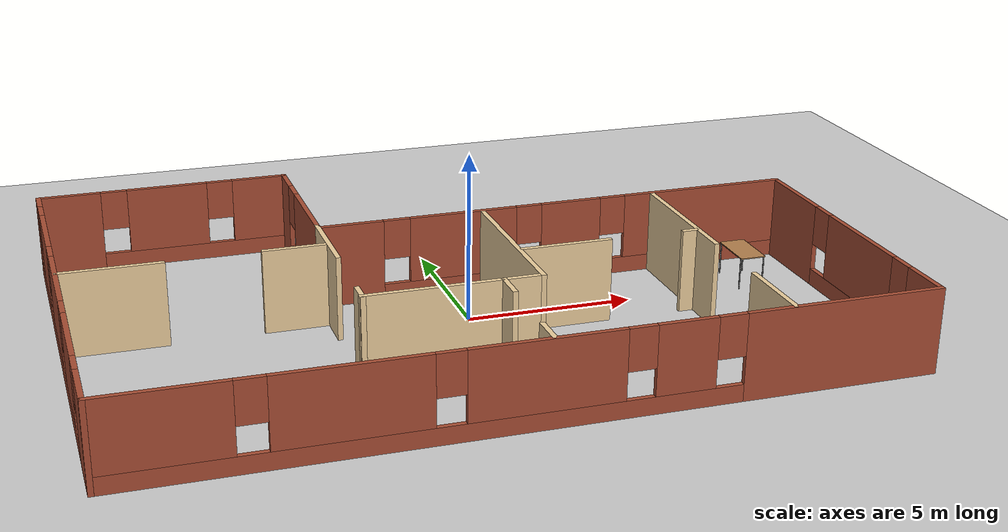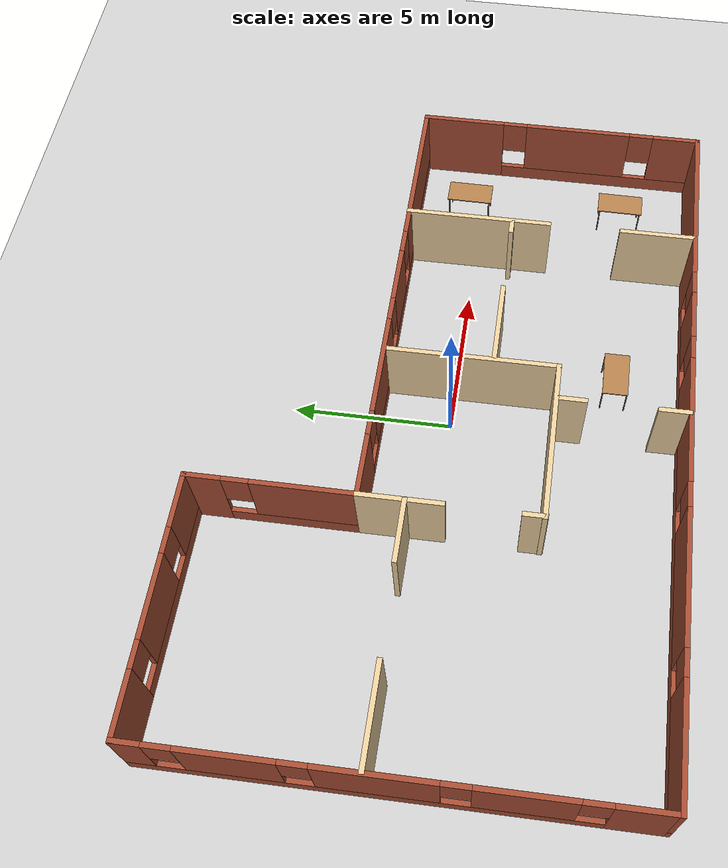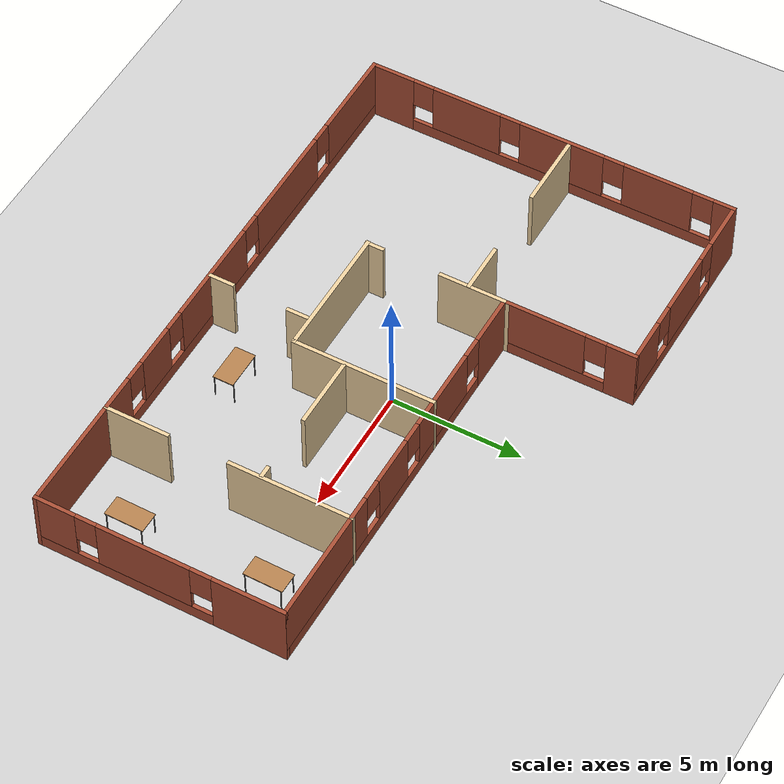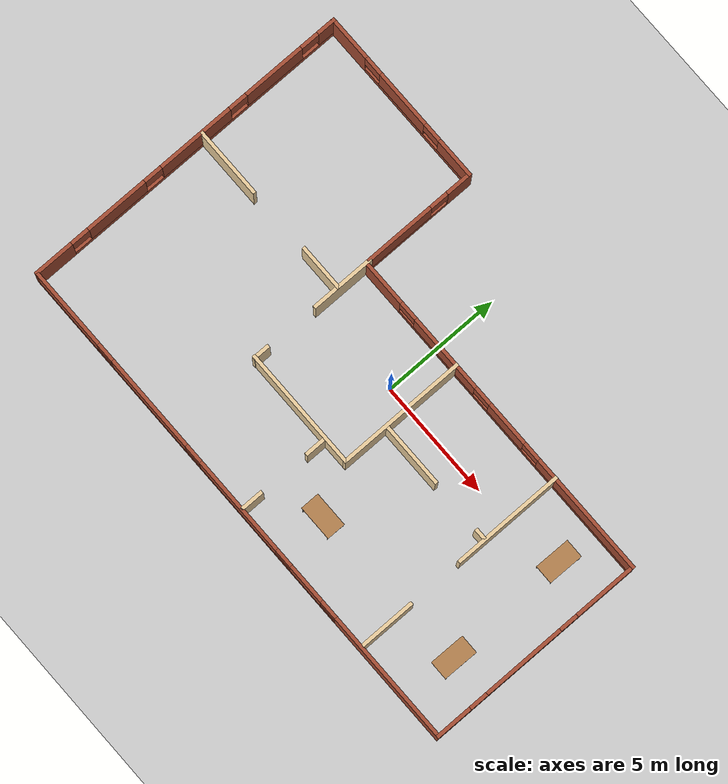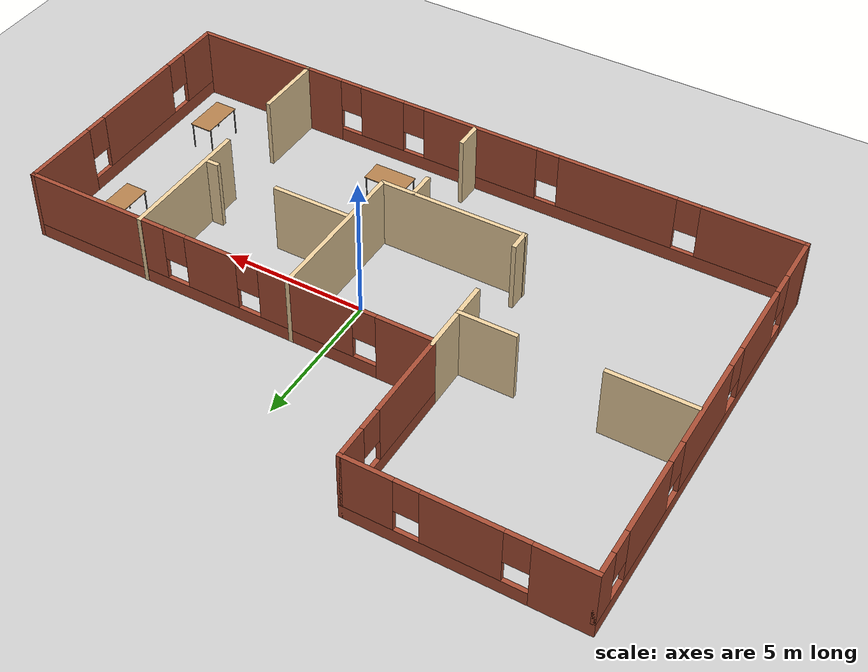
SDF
<sdf version="1.6">
 <world name="default">
  <model name="ground_plane">
   <static>1</static>
   <link name="link">
    <collision name="collision">
     <geometry><plane><normal>0 0 1</normal><size>100 100</size></plane></geometry>
     <surface><friction><ode><mu>100</mu><mu2>50</mu2></ode></friction></surface>
    </collision>
    <visual name="visual">
     <cast_shadows>0</cast_shadows>
     <geometry><plane><normal>0 0 1</normal><size>100 100</size></plane></geometry>
     <material>
      <script><uri>file://media/materials/scripts/gazebo.material</uri><name>Gazebo/Grey</name></script>
     </material>
    </visual>
   </link>
  </model>
  <model name="table_1">
   <static>1</static>
   <link name="link">
    <collision name="surface">
     <pose>0 0 1 0 -0 0</pose>
     <geometry><box><size>1.5 0.8 0.03</size></box></geometry>
     <surface><friction><ode><mu>0.6</mu><mu2>0.6</mu2></ode></friction></surface>
    </collision>
    <visual name="visual1">
     <pose>0 0 1 0 -0 0</pose>
     <geometry><box><size>1.5 0.8 0.03</size></box></geometry>
     <material>
      <script><uri>file://media/materials/scripts/gazebo.material</uri><name>Gazebo/Wood</name></script>
     </material>
    </visual>
    <collision name="front_left_leg">
     <pose>0.68 0.38 0.5 0 -0 0</pose>
     <geometry><cylinder><radius>0.02</radius><length>1</length></cylinder></geometry>
    </collision>
    <visual name="front_left_leg">
     <pose>0.68 0.38 0.5 0 -0 0</pose>
     <geometry><cylinder><radius>0.02</radius><length>1</length></cylinder></geometry>
     <material>
      <script><uri>file://media/materials/scripts/gazebo.material</uri><name>Gazebo/Grey</name></script>
     </material>
    </visual>
    <collision name="front_right_leg">
     <pose>0.68 -0.38 0.5 0 -0 0</pose>
     <geometry><cylinder><radius>0.02</radius><length>1</length></cylinder></geometry>
    </collision>
    <visual name="front_right_leg">
     <pose>0.68 -0.38 0.5 0 -0 0</pose>
     <geometry><cylinder><radius>0.02</radius><length>1</length></cylinder></geometry>
     <material>
      <script><uri>file://media/materials/scripts/gazebo.material</uri><name>Gazebo/Grey</name></script>
     </material>
    </visual>
    <collision name="back_right_leg">
     <pose>-0.68 -0.38 0.5 0 -0 0</pose>
     <geometry><cylinder><radius>0.02</radius><length>1</length></cylinder></geometry>
    </collision>
    <visual name="back_right_leg">
     <pose>-0.68 -0.38 0.5 0 -0 0</pose>
     <geometry><cylinder><radius>0.02</radius><length>1</length></cylinder></geometry>
     <material>
      <script><uri>file://media/materials/scripts/gazebo.material</uri><name>Gazebo/Grey</name></script>
     </material>
    </visual>
    <collision name="back_left_leg">
     <pose>-0.68 0.38 0.5 0 -0 0</pose>
     <geometry><cylinder><radius>0.02</radius><length>1</length></cylinder></geometry>
    </collision>
    <visual name="back_left_leg">
     <pose>-0.68 0.38 0.5 0 -0 0</pose>
     <geometry><cylinder><radius>0.02</radius><length>1</length></cylinder></geometry>
     <material>
      <script><uri>file://media/materials/scripts/gazebo.material</uri><name>Gazebo/Grey</name></script>
     </material>
    </visual>
   </link>
   <pose>1.9978 -5.01029 0 0 -0 0</pose>
  </model>
  <model name="table_2">
   <static>1</static>
   <link name="link">
    <collision name="surface">
     <pose>0 0 1 0 -0 0</pose>
     <geometry><box><size>1.5 0.8 0.03</size></box></geometry>
     <surface><friction><ode><mu>0.6</mu><mu2>0.6</mu2></ode></friction></surface>
    </collision>
    <visual name="visual1">
     <pose>0 0 1 0 -0 0</pose>
     <geometry><box><size>1.5 0.8 0.03</size></box></geometry>
     <material>
      <script><uri>file://media/materials/scripts/gazebo.material</uri><name>Gazebo/Wood</name></script>
     </material>
    </visual>
    <collision name="front_left_leg">
     <pose>0.68 0.38 0.5 0 -0 0</pose>
     <geometry><cylinder><radius>0.02</radius><length>1</length></cylinder></geometry>
    </collision>
    <visual name="front_left_leg">
     <pose>0.68 0.38 0.5 0 -0 0</pose>
     <geometry><cylinder><radius>0.02</radius><length>1</length></cylinder></geometry>
     <material>
      <script><uri>file://media/materials/scripts/gazebo.material</uri><name>Gazebo/Grey</name></script>
     </material>
    </visual>
    <collision name="front_right_leg">
     <pose>0.68 -0.38 0.5 0 -0 0</pose>
     <geometry><cylinder><radius>0.02</radius><length>1</length></cylinder></geometry>
    </collision>
    <visual name="front_right_leg">
     <pose>0.68 -0.38 0.5 0 -0 0</pose>
     <geometry><cylinder><radius>0.02</radius><length>1</length></cylinder></geometry>
     <material>
      <script><uri>file://media/materials/scripts/gazebo.material</uri><name>Gazebo/Grey</name></script>
     </material>
    </visual>
    <collision name="back_right_leg">
     <pose>-0.68 -0.38 0.5 0 -0 0</pose>
     <geometry><cylinder><radius>0.02</radius><length>1</length></cylinder></geometry>
    </collision>
    <visual name="back_right_leg">
     <pose>-0.68 -0.38 0.5 0 -0 0</pose>
     <geometry><cylinder><radius>0.02</radius><length>1</length></cylinder></geometry>
     <material>
      <script><uri>file://media/materials/scripts/gazebo.material</uri><name>Gazebo/Grey</name></script>
     </material>
    </visual>
    <collision name="back_left_leg">
     <pose>-0.68 0.38 0.5 0 -0 0</pose>
     <geometry><cylinder><radius>0.02</radius><length>1</length></cylinder></geometry>
    </collision>
    <visual name="back_left_leg">
     <pose>-0.68 0.38 0.5 0 -0 0</pose>
     <geometry><cylinder><radius>0.02</radius><length>1</length></cylinder></geometry>
     <material>
      <script><uri>file://media/materials/scripts/gazebo.material</uri><name>Gazebo/Grey</name></script>
     </material>
    </visual>
   </link>
   <pose>8.91481 0.43197 0 0 0 -1.57962</pose>
  </model>
  <model name="table_2_clone">
   <static>1</static>
   <link name="link">
    <collision name="surface">
     <pose>0 0 1 0 -0 0</pose>
     <geometry><box><size>1.5 0.8 0.03</size></box></geometry>
     <surface><friction><ode><mu>0.6</mu><mu2>0.6</mu2></ode></friction></surface>
    </collision>
    <visual name="visual1">
     <pose>0 0 1 0 -0 0</pose>
     <geometry><box><size>1.5 0.8 0.03</size></box></geometry>
     <material>
      <script><uri>file://media/materials/scripts/gazebo.material</uri><name>Gazebo/Wood</name></script>
     </material>
    </visual>
    <collision name="front_left_leg">
     <pose>0.68 0.38 0.5 0 -0 0</pose>
     <geometry><cylinder><radius>0.02</radius><length>1</length></cylinder></geometry>
    </collision>
    <visual name="front_left_leg">
     <pose>0.68 0.38 0.5 0 -0 0</pose>
     <geometry><cylinder><radius>0.02</radius><length>1</length></cylinder></geometry>
     <material>
      <script><uri>file://media/materials/scripts/gazebo.material</uri><name>Gazebo/Grey</name></script>
     </material>
    </visual>
    <collision name="front_right_leg">
     <pose>0.68 -0.38 0.5 0 -0 0</pose>
     <geometry><cylinder><radius>0.02</radius><length>1</length></cylinder></geometry>
    </collision>
    <visual name="front_right_leg">
     <pose>0.68 -0.38 0.5 0 -0 0</pose>
     <geometry><cylinder><radius>0.02</radius><length>1</length></cylinder></geometry>
     <material>
      <script><uri>file://media/materials/scripts/gazebo.material</uri><name>Gazebo/Grey</name></script>
     </material>
    </visual>
    <collision name="back_right_leg">
     <pose>-0.68 -0.38 0.5 0 -0 0</pose>
     <geometry><cylinder><radius>0.02</radius><length>1</length></cylinder></geometry>
    </collision>
    <visual name="back_right_leg">
     <pose>-0.68 -0.38 0.5 0 -0 0</pose>
     <geometry><cylinder><radius>0.02</radius><length>1</length></cylinder></geometry>
     <material>
      <script><uri>file://media/materials/scripts/gazebo.material</uri><name>Gazebo/Grey</name></script>
     </material>
    </visual>
    <collision name="back_left_leg">
     <pose>-0.68 0.38 0.5 0 -0 0</pose>
     <geometry><cylinder><radius>0.02</radius><length>1</length></cylinder></geometry>
    </collision>
    <visual name="back_left_leg">
     <pose>-0.68 0.38 0.5 0 -0 0</pose>
     <geometry><cylinder><radius>0.02</radius><length>1</length></cylinder></geometry>
     <material>
      <script><uri>file://media/materials/scripts/gazebo.material</uri><name>Gazebo/Grey</name></script>
     </material>
    </visual>
   </link>
   <pose>9.03987 -4.78179 0 0 0 -1.57962</pose>
  </model>
  <model name="building">
   <pose>-0.32696 0.02857 0 0 -0 0</pose>
   <link name="Wall_101">
    <pose>-3.575 4.75 0 0 -0 -1.5708</pose>
    <visual name="Wall_101_Visual_0">
     <pose>-1.91994 0 1.25 0 -0 0</pose>
     <geometry><box><size>1.16012 0.15 2.5</size></box></geometry>
     <material>
      <script><uri>file://media/materials/scripts/gazebo.material</uri><name>Gazebo/Bricks</name></script>
      <ambient>1 1 1 1</ambient>
     </material>
     <meta><layer>0</layer></meta>
    </visual>
    <collision name="Wall_101_Collision_0">
     <geometry><box><size>1.16012 0.15 2.5</size></box></geometry>
     <pose>-1.91994 0 1.25 0 -0 0</pose>
    </collision>
    <visual name="Wall_101_Visual_1">
     <pose>0.580059 0 0.25 0 -0 0</pose>
     <geometry><box><size>3.83988 0.15 0.5</size></box></geometry>
     <material>
      <script><uri>file://media/materials/scripts/gazebo.material</uri><name>Gazebo/Bricks</name></script>
      <ambient>1 1 1 1</ambient>
     </material>
     <meta><layer>0</layer></meta>
    </visual>
    <collision name="Wall_101_Collision_1">
     <geometry><box><size>3.83988 0.15 0.5</size></box></geometry>
     <pose>0.580059 0 0.25 0 -0 0</pose>
    </collision>
    <visual name="Wall_101_Visual_2">
     <pose>0.980059 0 1.5 0 -0 0</pose>
     <geometry><box><size>3.03988 0.15 2</size></box></geometry>
     <material>
      <script><uri>file://media/materials/scripts/gazebo.material</uri><name>Gazebo/Bricks</name></script>
      <ambient>1 1 1 1</ambient>
     </material>
     <meta><layer>0</layer></meta>
    </visual>
    <collision name="Wall_101_Collision_2">
     <geometry><box><size>3.03988 0.15 2</size></box></geometry>
     <pose>0.980059 0 1.5 0 -0 0</pose>
    </collision>
    <visual name="Wall_101_Visual_3">
     <pose>-0.939883 0 1.9 0 -0 0</pose>
     <geometry><box><size>0.8 0.15 1.2</size></box></geometry>
     <material>
      <script><uri>file://media/materials/scripts/gazebo.material</uri><name>Gazebo/Bricks</name></script>
      <ambient>1 1 1 1</ambient>
     </material>
     <meta><layer>0</layer></meta>
    </visual>
    <collision name="Wall_101_Collision_3">
     <geometry><box><size>0.8 0.15 1.2</size></box></geometry>
     <pose>-0.939883 0 1.9 0 -0 0</pose>
    </collision>
   </link>
   <link name="Wall_103">
    <collision name="Wall_103_Collision">
     <geometry><box><size>2.75 0.15 2.5</size></box></geometry>
     <pose>0 0 1.25 0 -0 0</pose>
    </collision>
    <visual name="Wall_103_Visual">
     <pose>0 0 1.25 0 -0 0</pose>
     <geometry><box><size>2.75 0.15 2.5</size></box></geometry>
     <material>
      <script><uri>file://media/materials/scripts/gazebo.material</uri><name>Gazebo/Grey</name></script>
      <ambient>0.921569 0.807843 0.615686 1</ambient>
     </material>
     <meta><layer>0</layer></meta>
    </visual>
    <pose>-3.575 1.025 0 0 -0 -1.5708</pose>
   </link>
   <link name="Wall_19">
    <pose>3.875 2.175 0 0 -0 0</pose>
    <visual name="Wall_19_Visual_0">
     <pose>-6.43713 0 1.25 0 -0 0</pose>
     <geometry><box><size>1.87573 0.15 2.5</size></box></geometry>
     <material>
      <script><uri>file://media/materials/scripts/gazebo.material</uri><name>Gazebo/Bricks</name></script>
      <ambient>1 1 1 1</ambient>
     </material>
     <meta><layer>0</layer></meta>
    </visual>
    <collision name="Wall_19_Collision_0">
     <geometry><box><size>1.87573 0.15 2.5</size></box></geometry>
     <pose>-6.43713 0 1.25 0 -0 0</pose>
    </collision>
    <visual name="Wall_19_Visual_1">
     <pose>0.937865 0 0.25 0 -0 0</pose>
     <geometry><box><size>12.8743 0.15 0.5</size></box></geometry>
     <material>
      <script><uri>file://media/materials/scripts/gazebo.material</uri><name>Gazebo/Bricks</name></script>
      <ambient>1 1 1 1</ambient>
     </material>
     <meta><layer>0</layer></meta>
    </visual>
    <collision name="Wall_19_Collision_1">
     <geometry><box><size>12.8743 0.15 0.5</size></box></geometry>
     <pose>0.937865 0 0.25 0 -0 0</pose>
    </collision>
    <visual name="Wall_19_Visual_2">
     <pose>-3.03299 0 1.5 0 -0 0</pose>
     <geometry><box><size>3.33255 0.15 2</size></box></geometry>
     <material>
      <script><uri>file://media/materials/scripts/gazebo.material</uri><name>Gazebo/Bricks</name></script>
      <ambient>1 1 1 1</ambient>
     </material>
     <meta><layer>0</layer></meta>
    </visual>
    <collision name="Wall_19_Collision_2">
     <geometry><box><size>3.33255 0.15 2</size></box></geometry>
     <pose>-3.03299 0 1.5 0 -0 0</pose>
    </collision>
    <visual name="Wall_19_Visual_3">
     <pose>0.383521 0 1.5 0 -0 0</pose>
     <geometry><box><size>1.90048 0.15 2</size></box></geometry>
     <material>
      <script><uri>file://media/materials/scripts/gazebo.material</uri><name>Gazebo/Bricks</name></script>
      <ambient>1 1 1 1</ambient>
     </material>
     <meta><layer>0</layer></meta>
    </visual>
    <collision name="Wall_19_Collision_3">
     <geometry><box><size>1.90048 0.15 2</size></box></geometry>
     <pose>0.383521 0 1.5 0 -0 0</pose>
    </collision>
    <visual name="Wall_19_Visual_4">
     <pose>4.75438 0 1.5 0 -0 0</pose>
     <geometry><box><size>5.24124 0.15 2</size></box></geometry>
     <material>
      <script><uri>file://media/materials/scripts/gazebo.material</uri><name>Gazebo/Bricks</name></script>
      <ambient>1 1 1 1</ambient>
     </material>
     <meta><layer>0</layer></meta>
    </visual>
    <collision name="Wall_19_Collision_4">
     <geometry><box><size>5.24124 0.15 2</size></box></geometry>
     <pose>4.75438 0 1.5 0 -0 0</pose>
    </collision>
    <visual name="Wall_19_Visual_5">
     <pose>-5.09927 0 1.9 0 -0 0</pose>
     <geometry><box><size>0.8 0.15 1.2</size></box></geometry>
     <material>
      <script><uri>file://media/materials/scripts/gazebo.material</uri><name>Gazebo/Bricks</name></script>
      <ambient>1 1 1 1</ambient>
     </material>
     <meta><layer>0</layer></meta>
    </visual>
    <collision name="Wall_19_Collision_5">
     <geometry><box><size>0.8 0.15 1.2</size></box></geometry>
     <pose>-5.09927 0 1.9 0 -0 0</pose>
    </collision>
    <visual name="Wall_19_Visual_6">
     <pose>-0.966718 0 1.9 0 -0 0</pose>
     <geometry><box><size>0.8 0.15 1.2</size></box></geometry>
     <material>
      <script><uri>file://media/materials/scripts/gazebo.material</uri><name>Gazebo/Bricks</name></script>
      <ambient>1 1 1 1</ambient>
     </material>
     <meta><layer>0</layer></meta>
    </visual>
    <collision name="Wall_19_Collision_6">
     <geometry><box><size>0.8 0.15 1.2</size></box></geometry>
     <pose>-0.966718 0 1.9 0 -0 0</pose>
    </collision>
    <visual name="Wall_19_Visual_7">
     <pose>1.73376 0 1.9 0 -0 0</pose>
     <geometry><box><size>0.8 0.15 1.2</size></box></geometry>
     <material>
      <script><uri>file://media/materials/scripts/gazebo.material</uri><name>Gazebo/Bricks</name></script>
      <ambient>1 1 1 1</ambient>
     </material>
     <meta><layer>0</layer></meta>
    </visual>
    <collision name="Wall_19_Collision_7">
     <geometry><box><size>0.8 0.15 1.2</size></box></geometry>
     <pose>1.73376 0 1.9 0 -0 0</pose>
    </collision>
   </link>
   <link name="Wall_45">
    <collision name="Wall_45_Collision">
     <geometry><box><size>3 0.15 2.5</size></box></geometry>
     <pose>0 0 1.25 0 -0 0</pose>
    </collision>
    <visual name="Wall_45_Visual">
     <pose>0 0 1.25 0 -0 0</pose>
     <geometry><box><size>3 0.15 2.5</size></box></geometry>
     <material>
      <script><uri>file://media/materials/scripts/gazebo.material</uri><name>Gazebo/Grey</name></script>
      <ambient>0.921569 0.807843 0.615686 1</ambient>
     </material>
     <meta><layer>0</layer></meta>
    </visual>
    <pose>-9.70177 0.771555 0 0 -0 0</pose>
   </link>
   <link name="Wall_47">
    <collision name="Wall_47_Collision">
     <geometry><box><size>2 0.15 2.5</size></box></geometry>
     <pose>0 0 1.25 0 -0 0</pose>
    </collision>
    <visual name="Wall_47_Visual">
     <pose>0 0 1.25 0 -0 0</pose>
     <geometry><box><size>2 0.15 2.5</size></box></geometry>
     <material>
      <script><uri>file://media/materials/scripts/gazebo.material</uri><name>Gazebo/Grey</name></script>
      <ambient>0.921569 0.807843 0.615686 1</ambient>
     </material>
     <meta><layer>0</layer></meta>
    </visual>
    <pose>-4.51547 0.805423 0 0 -0 0</pose>
   </link>
   <link name="Wall_60">
    <collision name="Wall_60_Collision">
     <geometry><box><size>5.20343 0.15 2.5</size></box></geometry>
     <pose>0 0 1.25 0 -0 0</pose>
    </collision>
    <visual name="Wall_60_Visual">
     <pose>0 0 1.25 0 -0 0</pose>
     <geometry><box><size>5.20343 0.15 2.5</size></box></geometry>
     <material>
      <script><uri>file://media/materials/scripts/gazebo.material</uri><name>Gazebo/Grey</name></script>
      <ambient>0.921569 0.807843 0.615686 1</ambient>
     </material>
     <meta><layer>0</layer></meta>
    </visual>
    <pose>-1.09679 -3.17412 0 0 -0 0</pose>
   </link>
   <link name="Wall_63">
    <collision name="Wall_63_Collision">
     <geometry><box><size>2.75 0.15 2.5</size></box></geometry>
     <pose>0 0 1.25 0 -0 0</pose>
    </collision>
    <visual name="Wall_63_Visual">
     <pose>0 0 1.25 0 -0 0</pose>
     <geometry><box><size>2.75 0.15 2.5</size></box></geometry>
     <material>
      <script><uri>file://media/materials/scripts/gazebo.material</uri><name>Gazebo/Grey</name></script>
      <ambient>0.921569 0.807843 0.615686 1</ambient>
     </material>
     <meta><layer>0</layer></meta>
    </visual>
    <pose>2.84816 -1.19957 0 0 -0 0</pose>
   </link>
   <link name="Wall_65">
    <collision name="Wall_65_Collision">
     <geometry><box><size>4.75 0.15 2.5</size></box></geometry>
     <pose>0 0 1.25 0 -0 0</pose>
    </collision>
    <visual name="Wall_65_Visual">
     <pose>0 0 1.25 0 -0 0</pose>
     <geometry><box><size>4.75 0.15 2.5</size></box></geometry>
     <material>
      <script><uri>file://media/materials/scripts/gazebo.material</uri><name>Gazebo/Grey</name></script>
      <ambient>0.921569 0.807843 0.615686 1</ambient>
     </material>
     <meta><layer>0</layer></meta>
    </visual>
    <pose>6.90976 -0.111242 0 0 -0 -1.5708</pose>
   </link>
   <link name="Wall_68">
    <collision name="Wall_68_Collision">
     <geometry><box><size>2.5 0.15 2.5</size></box></geometry>
     <pose>0 0 1.25 0 -0 0</pose>
    </collision>
    <visual name="Wall_68_Visual">
     <pose>0 0 1.25 0 -0 0</pose>
     <geometry><box><size>2.5 0.15 2.5</size></box></geometry>
     <material>
      <script><uri>file://media/materials/scripts/gazebo.material</uri><name>Gazebo/Grey</name></script>
      <ambient>0.921569 0.807843 0.615686 1</ambient>
     </material>
     <meta><layer>0</layer></meta>
    </visual>
    <pose>6.91101 -5.97785 0 0 -0 -1.5708</pose>
   </link>
   <link name="Wall_72">
    <collision name="Wall_72_Collision">
     <geometry><box><size>0.5 0.15 2.5</size></box></geometry>
     <pose>0 0 1.25 0 -0 0</pose>
    </collision>
    <visual name="Wall_72_Visual">
     <pose>0 0 1.25 0 -0 0</pose>
     <geometry><box><size>0.5 0.15 2.5</size></box></geometry>
     <material>
      <script><uri>file://media/materials/scripts/gazebo.material</uri><name>Gazebo/Grey</name></script>
      <ambient>0.921569 0.807843 0.615686 1</ambient>
     </material>
     <meta><layer>0</layer></meta>
    </visual>
    <pose>6.65459 -1.22008 0 0 -0 0</pose>
   </link>
   <link name="Wall_75">
    <collision name="Wall_75_Collision">
     <geometry><box><size>1 0.15 2.5</size></box></geometry>
     <pose>0 0 1.25 0 -0 0</pose>
    </collision>
    <visual name="Wall_75_Visual">
     <pose>0 0 1.25 0 -0 0</pose>
     <geometry><box><size>1 0.15 2.5</size></box></geometry>
     <material>
      <script><uri>file://media/materials/scripts/gazebo.material</uri><name>Gazebo/Grey</name></script>
      <ambient>0.921569 0.807843 0.615686 1</ambient>
     </material>
     <meta><layer>0</layer></meta>
    </visual>
    <pose>0.314782 -3.61339 0 0 -0 -1.5708</pose>
   </link>
   <link name="Wall_77">
    <collision name="Wall_77_Collision">
     <geometry><box><size>1 0.15 2.5</size></box></geometry>
     <pose>0 0 1.25 0 -0 0</pose>
    </collision>
    <visual name="Wall_77_Visual">
     <pose>0 0 1.25 0 -0 0</pose>
     <geometry><box><size>1 0.15 2.5</size></box></geometry>
     <material>
      <script><uri>file://media/materials/scripts/gazebo.material</uri><name>Gazebo/Grey</name></script>
      <ambient>0.921569 0.807843 0.615686 1</ambient>
     </material>
     <meta><layer>0</layer></meta>
    </visual>
    <pose>0.289318 -6.69376 0 0 -0 1.5708</pose>
   </link>
   <link name="Wall_80">
    <collision name="Wall_80_Collision">
     <geometry><box><size>5.5 0.15 2.5</size></box></geometry>
     <pose>0 0 1.25 0 -0 0</pose>
    </collision>
    <visual name="Wall_80_Visual">
     <pose>0 0 1.25 0 -0 0</pose>
     <geometry><box><size>5.5 0.15 2.5</size></box></geometry>
     <material>
      <script><uri>file://media/materials/scripts/gazebo.material</uri><name>Gazebo/Grey</name></script>
      <ambient>0.921569 0.807843 0.615686 1</ambient>
     </material>
     <meta><layer>0</layer></meta>
    </visual>
    <pose>1.42992 -0.499121 0 0 -0 1.5708</pose>
   </link>
   <link name="Wall_82">
    <pose>11.175 -2.5 0 0 -0 -1.5708</pose>
    <visual name="Wall_82_Visual_0">
     <pose>-3.36694 0 1.25 0 -0 0</pose>
     <geometry><box><size>2.76612 0.15 2.5</size></box></geometry>
     <material>
      <script><uri>file://media/materials/scripts/gazebo.material</uri><name>Gazebo/Bricks</name></script>
      <ambient>1 1 1 1</ambient>
     </material>
     <meta><layer>0</layer></meta>
    </visual>
    <collision name="Wall_82_Collision_0">
     <geometry><box><size>2.76612 0.15 2.5</size></box></geometry>
     <pose>-3.36694 0 1.25 0 -0 0</pose>
    </collision>
    <visual name="Wall_82_Visual_1">
     <pose>1.38306 0 0.25 0 -0 0</pose>
     <geometry><box><size>6.73388 0.15 0.5</size></box></geometry>
     <material>
      <script><uri>file://media/materials/scripts/gazebo.material</uri><name>Gazebo/Bricks</name></script>
      <ambient>1 1 1 1</ambient>
     </material>
     <meta><layer>0</layer></meta>
    </visual>
    <collision name="Wall_82_Collision_1">
     <geometry><box><size>6.73388 0.15 0.5</size></box></geometry>
     <pose>1.38306 0 0.25 0 -0 0</pose>
    </collision>
    <visual name="Wall_82_Visual_2">
     <pose>0.584685 0 1.5 0 -0 0</pose>
     <geometry><box><size>3.53713 0.15 2</size></box></geometry>
     <material>
      <script><uri>file://media/materials/scripts/gazebo.material</uri><name>Gazebo/Bricks</name></script>
      <ambient>1 1 1 1</ambient>
     </material>
     <meta><layer>0</layer></meta>
    </visual>
    <collision name="Wall_82_Collision_2">
     <geometry><box><size>3.53713 0.15 2</size></box></geometry>
     <pose>0.584685 0 1.5 0 -0 0</pose>
    </collision>
    <visual name="Wall_82_Visual_3">
     <pose>3.95163 0 1.5 0 -0 0</pose>
     <geometry><box><size>1.59675 0.15 2</size></box></geometry>
     <material>
      <script><uri>file://media/materials/scripts/gazebo.material</uri><name>Gazebo/Bricks</name></script>
      <ambient>1 1 1 1</ambient>
     </material>
     <meta><layer>0</layer></meta>
    </visual>
    <collision name="Wall_82_Collision_3">
     <geometry><box><size>1.59675 0.15 2</size></box></geometry>
     <pose>3.95163 0 1.5 0 -0 0</pose>
    </collision>
    <visual name="Wall_82_Visual_4">
     <pose>-1.58388 0 1.9 0 -0 0</pose>
     <geometry><box><size>0.8 0.15 1.2</size></box></geometry>
     <material>
      <script><uri>file://media/materials/scripts/gazebo.material</uri><name>Gazebo/Bricks</name></script>
      <ambient>1 1 1 1</ambient>
     </material>
     <meta><layer>0</layer></meta>
    </visual>
    <collision name="Wall_82_Collision_4">
     <geometry><box><size>0.8 0.15 1.2</size></box></geometry>
     <pose>-1.58388 0 1.9 0 -0 0</pose>
    </collision>
    <visual name="Wall_82_Visual_5">
     <pose>2.75325 0 1.9 0 -0 0</pose>
     <geometry><box><size>0.8 0.15 1.2</size></box></geometry>
     <material>
      <script><uri>file://media/materials/scripts/gazebo.material</uri><name>Gazebo/Bricks</name></script>
      <ambient>1 1 1 1</ambient>
     </material>
     <meta><layer>0</layer></meta>
    </visual>
    <collision name="Wall_82_Collision_5">
     <geometry><box><size>0.8 0.15 1.2</size></box></geometry>
     <pose>2.75325 0 1.9 0 -0 0</pose>
    </collision>
   </link>
   <link name="Wall_84">
    <pose>1e-06 -7.175 0 0 -0 3.14159</pose>
    <visual name="Wall_84_Visual_0">
     <pose>-8.38388 0 1.25 0 -0 0</pose>
     <geometry><box><size>5.73224 0.15 2.5</size></box></geometry>
     <material>
      <script><uri>file://media/materials/scripts/gazebo.material</uri><name>Gazebo/Bricks</name></script>
      <ambient>1 1 1 1</ambient>
     </material>
     <meta><layer>0</layer></meta>
    </visual>
    <collision name="Wall_84_Collision_0">
     <geometry><box><size>5.73224 0.15 2.5</size></box></geometry>
     <pose>-8.38388 0 1.25 0 -0 0</pose>
    </collision>
    <visual name="Wall_84_Visual_1">
     <pose>2.86612 0 0.25 0 -0 0</pose>
     <geometry><box><size>16.7678 0.15 0.5</size></box></geometry>
     <material>
      <script><uri>file://media/materials/scripts/gazebo.material</uri><name>Gazebo/Bricks</name></script>
      <ambient>1 1 1 1</ambient>
     </material>
     <meta><layer>0</layer></meta>
    </visual>
    <collision name="Wall_84_Collision_1">
     <geometry><box><size>16.7678 0.15 0.5</size></box></geometry>
     <pose>2.86612 0 0.25 0 -0 0</pose>
    </collision>
    <visual name="Wall_84_Visual_2">
     <pose>-3.87611 0 1.5 0 -0 0</pose>
     <geometry><box><size>1.6833 0.15 2</size></box></geometry>
     <material>
      <script><uri>file://media/materials/scripts/gazebo.material</uri><name>Gazebo/Bricks</name></script>
      <ambient>1 1 1 1</ambient>
     </material>
     <meta><layer>0</layer></meta>
    </visual>
    <collision name="Wall_84_Collision_2">
     <geometry><box><size>1.6833 0.15 2</size></box></geometry>
     <pose>-3.87611 0 1.5 0 -0 0</pose>
    </collision>
    <visual name="Wall_84_Visual_3">
     <pose>-0.118264 0 1.5 0 -0 0</pose>
     <geometry><box><size>4.2324 0.15 2</size></box></geometry>
     <material>
      <script><uri>file://media/materials/scripts/gazebo.material</uri><name>Gazebo/Bricks</name></script>
      <ambient>1 1 1 1</ambient>
     </material>
     <meta><layer>0</layer></meta>
    </visual>
    <collision name="Wall_84_Collision_3">
     <geometry><box><size>4.2324 0.15 2</size></box></geometry>
     <pose>-0.118264 0 1.5 0 -0 0</pose>
    </collision>
    <visual name="Wall_84_Visual_4">
     <pose>4.86003 0 1.5 0 -0 0</pose>
     <geometry><box><size>4.12418 0.15 2</size></box></geometry>
     <material>
      <script><uri>file://media/materials/scripts/gazebo.material</uri><name>Gazebo/Bricks</name></script>
      <ambient>1 1 1 1</ambient>
     </material>
     <meta><layer>0</layer></meta>
    </visual>
    <collision name="Wall_84_Collision_4">
     <geometry><box><size>4.12418 0.15 2</size></box></geometry>
     <pose>4.86003 0 1.5 0 -0 0</pose>
    </collision>
    <visual name="Wall_84_Visual_5">
     <pose>9.48606 0 1.5 0 -0 0</pose>
     <geometry><box><size>3.52788 0.15 2</size></box></geometry>
     <material>
      <script><uri>file://media/materials/scripts/gazebo.material</uri><name>Gazebo/Bricks</name></script>
      <ambient>1 1 1 1</ambient>
     </material>
     <meta><layer>0</layer></meta>
    </visual>
    <collision name="Wall_84_Collision_5">
     <geometry><box><size>3.52788 0.15 2</size></box></geometry>
     <pose>9.48606 0 1.5 0 -0 0</pose>
    </collision>
    <visual name="Wall_84_Visual_6">
     <pose>-5.11776 0 1.9 0 -0 0</pose>
     <geometry><box><size>0.8 0.15 1.2</size></box></geometry>
     <material>
      <script><uri>file://media/materials/scripts/gazebo.material</uri><name>Gazebo/Bricks</name></script>
      <ambient>1 1 1 1</ambient>
     </material>
     <meta><layer>0</layer></meta>
    </visual>
    <collision name="Wall_84_Collision_6">
     <geometry><box><size>0.8 0.15 1.2</size></box></geometry>
     <pose>-5.11776 0 1.9 0 -0 0</pose>
    </collision>
    <visual name="Wall_84_Visual_7">
     <pose>-2.63447 0 1.9 0 -0 0</pose>
     <geometry><box><size>0.8 0.15 1.2</size></box></geometry>
     <material>
      <script><uri>file://media/materials/scripts/gazebo.material</uri><name>Gazebo/Bricks</name></script>
      <ambient>1 1 1 1</ambient>
     </material>
     <meta><layer>0</layer></meta>
    </visual>
    <collision name="Wall_84_Collision_7">
     <geometry><box><size>0.8 0.15 1.2</size></box></geometry>
     <pose>-2.63447 0 1.9 0 -0 0</pose>
    </collision>
    <visual name="Wall_84_Visual_8">
     <pose>2.39794 0 1.9 0 -0 0</pose>
     <geometry><box><size>0.8 0.15 1.2</size></box></geometry>
     <material>
      <script><uri>file://media/materials/scripts/gazebo.material</uri><name>Gazebo/Bricks</name></script>
      <ambient>1 1 1 1</ambient>
     </material>
     <meta><layer>0</layer></meta>
    </visual>
    <collision name="Wall_84_Collision_8">
     <geometry><box><size>0.8 0.15 1.2</size></box></geometry>
     <pose>2.39794 0 1.9 0 -0 0</pose>
    </collision>
    <visual name="Wall_84_Visual_9">
     <pose>7.32212 0 1.9 0 -0 0</pose>
     <geometry><box><size>0.8 0.15 1.2</size></box></geometry>
     <material>
      <script><uri>file://media/materials/scripts/gazebo.material</uri><name>Gazebo/Bricks</name></script>
      <ambient>1 1 1 1</ambient>
     </material>
     <meta><layer>0</layer></meta>
    </visual>
    <collision name="Wall_84_Collision_9">
     <geometry><box><size>0.8 0.15 1.2</size></box></geometry>
     <pose>7.32212 0 1.9 0 -0 0</pose>
    </collision>
   </link>
   <link name="Wall_86">
    <pose>-11.175 0 0 0 -0 1.5708</pose>
    <visual name="Wall_86_Visual_0">
     <pose>-6.38206 0 1.25 0 -0 0</pose>
     <geometry><box><size>1.73587 0.15 2.5</size></box></geometry>
     <material>
      <script><uri>file://media/materials/scripts/gazebo.material</uri><name>Gazebo/Bricks</name></script>
      <ambient>1 1 1 1</ambient>
     </material>
     <meta><layer>0</layer></meta>
    </visual>
    <collision name="Wall_86_Collision_0">
     <geometry><box><size>1.73587 0.15 2.5</size></box></geometry>
     <pose>-6.38206 0 1.25 0 -0 0</pose>
    </collision>
    <visual name="Wall_86_Visual_1">
     <pose>0.867936 0 0.25 0 -0 0</pose>
     <geometry><box><size>12.7641 0.15 0.5</size></box></geometry>
     <material>
      <script><uri>file://media/materials/scripts/gazebo.material</uri><name>Gazebo/Bricks</name></script>
      <ambient>1 1 1 1</ambient>
     </material>
     <meta><layer>0</layer></meta>
    </visual>
    <collision name="Wall_86_Collision_1">
     <geometry><box><size>12.7641 0.15 0.5</size></box></geometry>
     <pose>0.867936 0 0.25 0 -0 0</pose>
    </collision>
    <visual name="Wall_86_Visual_2">
     <pose>-3.35549 0 1.5 0 -0 0</pose>
     <geometry><box><size>2.71727 0.15 2</size></box></geometry>
     <material>
      <script><uri>file://media/materials/scripts/gazebo.material</uri><name>Gazebo/Bricks</name></script>
      <ambient>1 1 1 1</ambient>
     </material>
     <meta><layer>0</layer></meta>
    </visual>
    <collision name="Wall_86_Collision_2">
     <geometry><box><size>2.71727 0.15 2</size></box></geometry>
     <pose>-3.35549 0 1.5 0 -0 0</pose>
    </collision>
    <visual name="Wall_86_Visual_3">
     <pose>0.461999 0 1.5 0 -0 0</pose>
     <geometry><box><size>3.31771 0.15 2</size></box></geometry>
     <material>
      <script><uri>file://media/materials/scripts/gazebo.material</uri><name>Gazebo/Bricks</name></script>
      <ambient>1 1 1 1</ambient>
     </material>
     <meta><layer>0</layer></meta>
    </visual>
    <collision name="Wall_86_Collision_3">
     <geometry><box><size>3.31771 0.15 2</size></box></geometry>
     <pose>0.461999 0 1.5 0 -0 0</pose>
    </collision>
    <visual name="Wall_86_Visual_4">
     <pose>4.2598 0 1.5 0 -0 0</pose>
     <geometry><box><size>2.67789 0.15 2</size></box></geometry>
     <material>
      <script><uri>file://media/materials/scripts/gazebo.material</uri><name>Gazebo/Bricks</name></script>
      <ambient>1 1 1 1</ambient>
     </material>
     <meta><layer>0</layer></meta>
    </visual>
    <collision name="Wall_86_Collision_4">
     <geometry><box><size>2.67789 0.15 2</size></box></geometry>
     <pose>4.2598 0 1.5 0 -0 0</pose>
    </collision>
    <visual name="Wall_86_Visual_5">
     <pose>6.82437 0 1.5 0 -0 0</pose>
     <geometry><box><size>0.851257 0.15 2</size></box></geometry>
     <material>
      <script><uri>file://media/materials/scripts/gazebo.material</uri><name>Gazebo/Bricks</name></script>
      <ambient>1 1 1 1</ambient>
     </material>
     <meta><layer>0</layer></meta>
    </visual>
    <collision name="Wall_86_Collision_5">
     <geometry><box><size>0.851257 0.15 2</size></box></geometry>
     <pose>6.82437 0 1.5 0 -0 0</pose>
    </collision>
    <visual name="Wall_86_Visual_6">
     <pose>-5.11413 0 1.9 0 -0 0</pose>
     <geometry><box><size>0.8 0.15 1.2</size></box></geometry>
     <material>
      <script><uri>file://media/materials/scripts/gazebo.material</uri><name>Gazebo/Bricks</name></script>
      <ambient>1 1 1 1</ambient>
     </material>
     <meta><layer>0</layer></meta>
    </visual>
    <collision name="Wall_86_Collision_6">
     <geometry><box><size>0.8 0.15 1.2</size></box></geometry>
     <pose>-5.11413 0 1.9 0 -0 0</pose>
    </collision>
    <visual name="Wall_86_Visual_7">
     <pose>-1.59686 0 1.9 0 -0 0</pose>
     <geometry><box><size>0.8 0.15 1.2</size></box></geometry>
     <material>
      <script><uri>file://media/materials/scripts/gazebo.material</uri><name>Gazebo/Bricks</name></script>
      <ambient>1 1 1 1</ambient>
     </material>
     <meta><layer>0</layer></meta>
    </visual>
    <collision name="Wall_86_Collision_7">
     <geometry><box><size>0.8 0.15 1.2</size></box></geometry>
     <pose>-1.59686 0 1.9 0 -0 0</pose>
    </collision>
    <visual name="Wall_86_Visual_8">
     <pose>2.52085 0 1.9 0 -0 0</pose>
     <geometry><box><size>0.8 0.15 1.2</size></box></geometry>
     <material>
      <script><uri>file://media/materials/scripts/gazebo.material</uri><name>Gazebo/Bricks</name></script>
      <ambient>1 1 1 1</ambient>
     </material>
     <meta><layer>0</layer></meta>
    </visual>
    <collision name="Wall_86_Collision_8">
     <geometry><box><size>0.8 0.15 1.2</size></box></geometry>
     <pose>2.52085 0 1.9 0 -0 0</pose>
    </collision>
    <visual name="Wall_86_Visual_9">
     <pose>5.99874 0 1.9 0 -0 0</pose>
     <geometry><box><size>0.8 0.15 1.2</size></box></geometry>
     <material>
      <script><uri>file://media/materials/scripts/gazebo.material</uri><name>Gazebo/Bricks</name></script>
      <ambient>1 1 1 1</ambient>
     </material>
     <meta><layer>0</layer></meta>
    </visual>
    <collision name="Wall_86_Collision_9">
     <geometry><box><size>0.8 0.15 1.2</size></box></geometry>
     <pose>5.99874 0 1.9 0 -0 0</pose>
    </collision>
   </link>
   <link name="Wall_94">
    <collision name="Wall_94_Collision">
     <geometry><box><size>0.75 0.15 2.5</size></box></geometry>
     <pose>0 0 1.25 0 -0 0</pose>
    </collision>
    <visual name="Wall_94_Visual">
     <pose>0 0 1.25 0 -0 0</pose>
     <geometry><box><size>0.75 0.15 2.5</size></box></geometry>
     <material>
      <script><uri>file://media/materials/scripts/gazebo.material</uri><name>Gazebo/Grey</name></script>
      <ambient>0.921569 0.807843 0.615686 1</ambient>
     </material>
     <meta><layer>0</layer></meta>
    </visual>
    <pose>-3.60316 -2.89446 0 0 -0 1.5708</pose>
   </link>
   <link name="Wall_98">
    <pose>-7.375 7.175 0 0 -0 0</pose>
    <visual name="Wall_98_Visual_0">
     <pose>-2.90827 0 1.25 0 -0 0</pose>
     <geometry><box><size>1.93346 0.15 2.5</size></box></geometry>
     <material>
      <script><uri>file://media/materials/scripts/gazebo.material</uri><name>Gazebo/Bricks</name></script>
      <ambient>1 1 1 1</ambient>
     </material>
     <meta><layer>0</layer></meta>
    </visual>
    <collision name="Wall_98_Collision_0">
     <geometry><box><size>1.93346 0.15 2.5</size></box></geometry>
     <pose>-2.90827 0 1.25 0 -0 0</pose>
    </collision>
    <visual name="Wall_98_Visual_1">
     <pose>0.966729 0 0.25 0 -0 0</pose>
     <geometry><box><size>5.81654 0.15 0.5</size></box></geometry>
     <material>
      <script><uri>file://media/materials/scripts/gazebo.material</uri><name>Gazebo/Bricks</name></script>
      <ambient>1 1 1 1</ambient>
     </material>
     <meta><layer>0</layer></meta>
    </visual>
    <collision name="Wall_98_Collision_1">
     <geometry><box><size>5.81654 0.15 0.5</size></box></geometry>
     <pose>0.966729 0 0.25 0 -0 0</pose>
    </collision>
    <visual name="Wall_98_Visual_2">
     <pose>0.095112 0 1.5 0 -0 0</pose>
     <geometry><box><size>2.47331 0.15 2</size></box></geometry>
     <material>
      <script><uri>file://media/materials/scripts/gazebo.material</uri><name>Gazebo/Bricks</name></script>
      <ambient>1 1 1 1</ambient>
     </material>
     <meta><layer>0</layer></meta>
    </visual>
    <collision name="Wall_98_Collision_2">
     <geometry><box><size>2.47331 0.15 2</size></box></geometry>
     <pose>0.095112 0 1.5 0 -0 0</pose>
    </collision>
    <visual name="Wall_98_Visual_3">
     <pose>3.00338 0 1.5 0 -0 0</pose>
     <geometry><box><size>1.74323 0.15 2</size></box></geometry>
     <material>
      <script><uri>file://media/materials/scripts/gazebo.material</uri><name>Gazebo/Bricks</name></script>
      <ambient>1 1 1 1</ambient>
     </material>
     <meta><layer>0</layer></meta>
    </visual>
    <collision name="Wall_98_Collision_3">
     <geometry><box><size>1.74323 0.15 2</size></box></geometry>
     <pose>3.00338 0 1.5 0 -0 0</pose>
    </collision>
    <visual name="Wall_98_Visual_4">
     <pose>-1.54154 0 1.9 0 -0 0</pose>
     <geometry><box><size>0.8 0.15 1.2</size></box></geometry>
     <material>
      <script><uri>file://media/materials/scripts/gazebo.material</uri><name>Gazebo/Bricks</name></script>
      <ambient>1 1 1 1</ambient>
     </material>
     <meta><layer>0</layer></meta>
    </visual>
    <collision name="Wall_98_Collision_4">
     <geometry><box><size>0.8 0.15 1.2</size></box></geometry>
     <pose>-1.54154 0 1.9 0 -0 0</pose>
    </collision>
    <visual name="Wall_98_Visual_5">
     <pose>1.73177 0 1.9 0 -0 0</pose>
     <geometry><box><size>0.8 0.15 1.2</size></box></geometry>
     <material>
      <script><uri>file://media/materials/scripts/gazebo.material</uri><name>Gazebo/Bricks</name></script>
      <ambient>1 1 1 1</ambient>
     </material>
     <meta><layer>0</layer></meta>
    </visual>
    <collision name="Wall_98_Collision_5">
     <geometry><box><size>0.8 0.15 1.2</size></box></geometry>
     <pose>1.73177 0 1.9 0 -0 0</pose>
    </collision>
   </link>
   <static>1</static>
  </model>
 </world>
</sdf>
